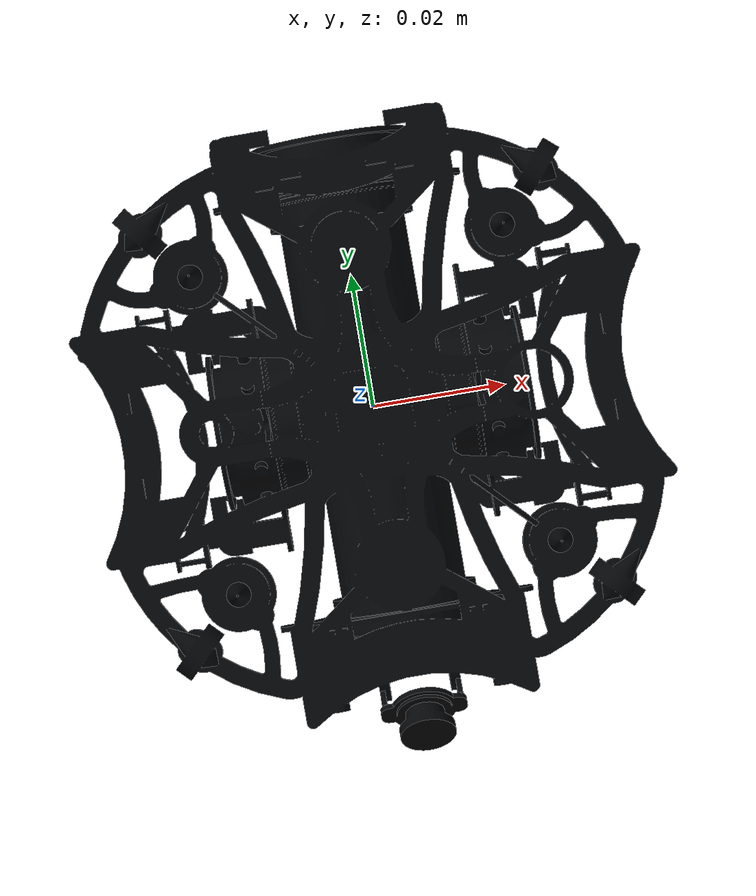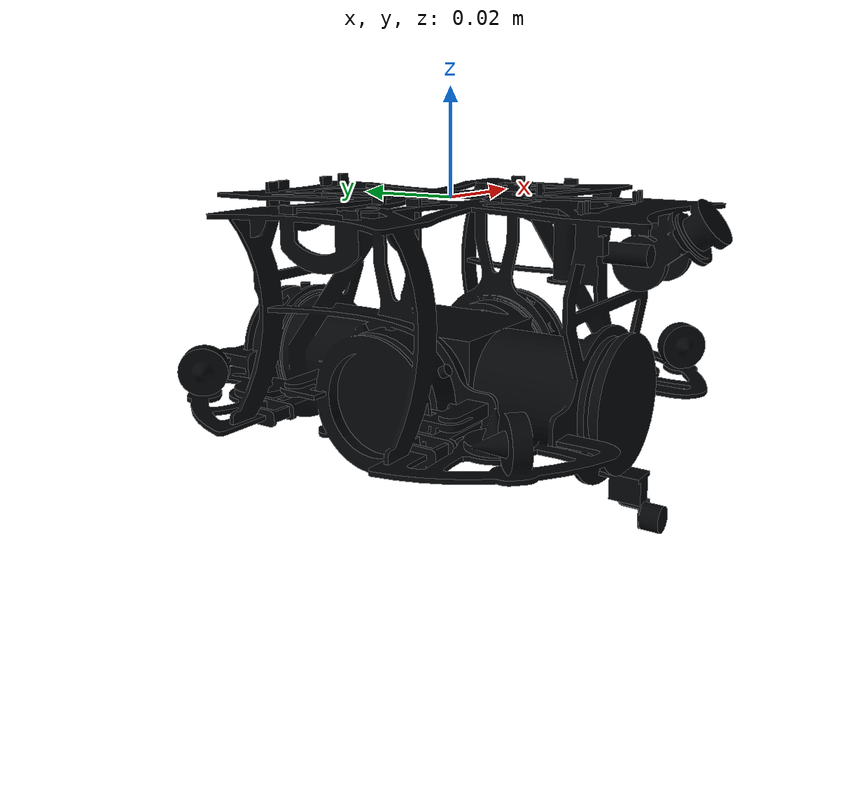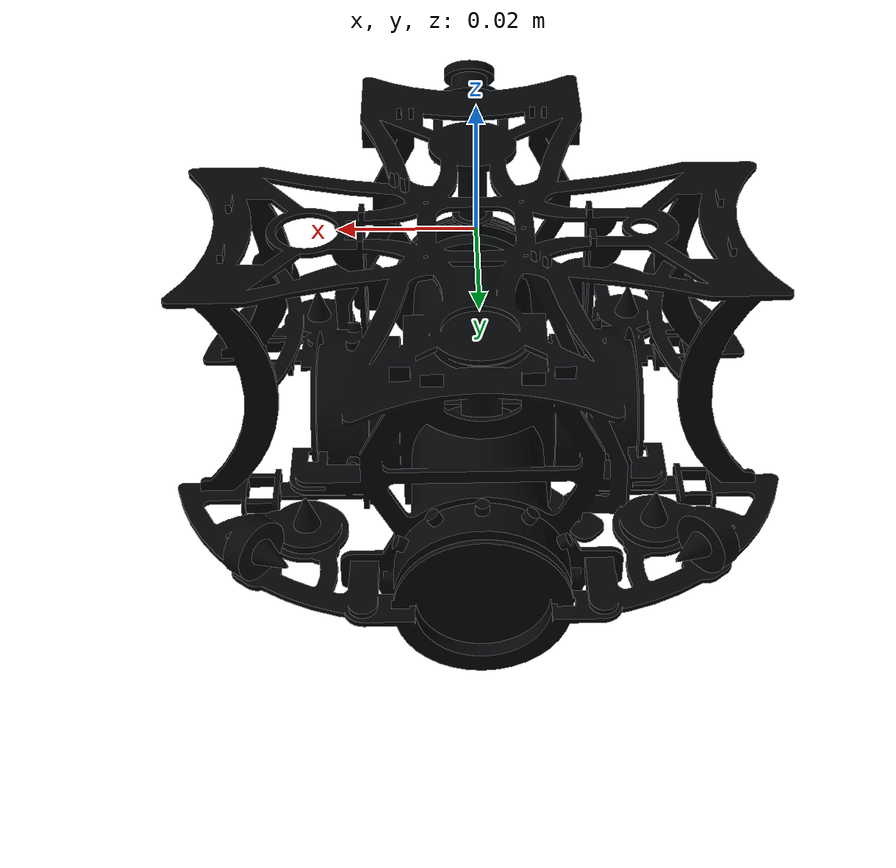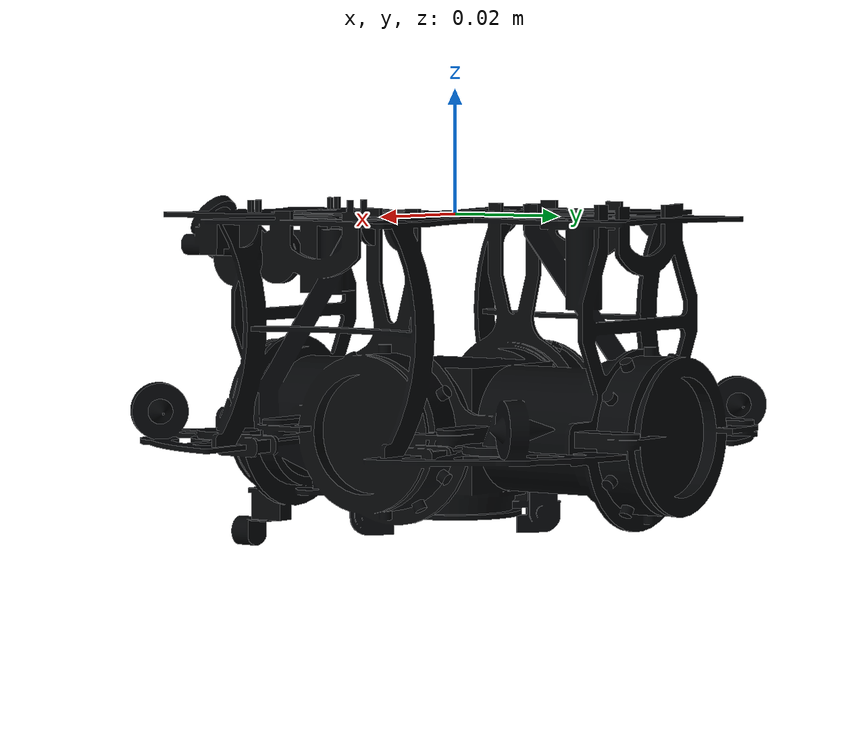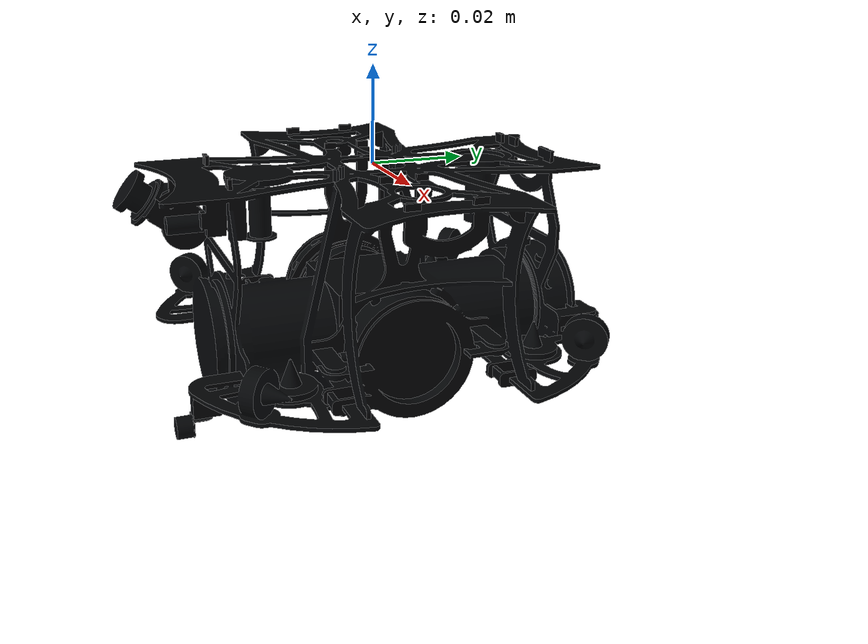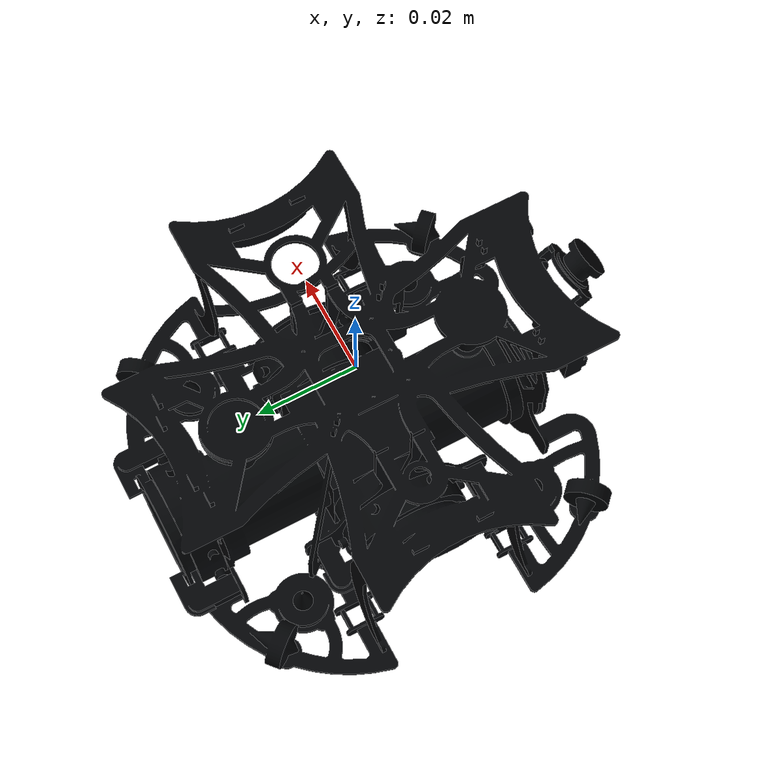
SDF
<?xml version='1.0'?>
<sdf version='1.5'>
  <model name='BlueRov2'>
    <pose>0 0 0 0 0 0</pose>
    <link name='base_link'>
      <inertial>
        <mass>11</mass>
        <inertia>
          <ixx>1</ixx>
          <ixy>0</ixy>
          <ixz>0</ixz>
          <iyy>1</iyy>
          <iyz>0</iyz>
          <izz>1</izz>
        </inertia>
      </inertial>
      <visual name='base_link_visual'>
        <geometry>
          <mesh>
            <scale>0.1 0.1 0.1</scale>
            <uri>model://mesh/auv.dae</uri>
          </mesh>
        </geometry>
      </visual>
      <sensor name="imu_sensor" type="imu">
        <pose>0 0 0 0 0 0</pose>
        <always_on>1</always_on>
        <update_rate>1000.0</update_rate>
      </sensor>
    </link>

    <link name='thruster1'>
      <pose>0.12 -0.11 0 1.5707963 1.5707963 -0.78539815</pose>
      <inertial>
        <mass>1e-10</mass>
        <inertia>
          <ixx>1</ixx>
          <ixy>0</ixy>
          <ixz>0</ixz>
          <iyy>1</iyy>
          <iyz>0</iyz>
          <izz>1</izz>
        </inertia>
      </inertial>
    </link>
    <joint name='thruster1_joint' type='fixed'>
      <parent>base_link</parent>
      <child>thruster1</child>
    </joint>

    <link name='thruster2'>
      <pose>0.12 0.11 0 1.5707963 1.5707963 3.92699075</pose>
      <inertial>
        <mass>1e-10</mass>
        <inertia>
          <ixx>1</ixx>
          <ixy>0</ixy>
          <ixz>0</ixz>
          <iyy>1</iyy>
          <iyz>0</iyz>
          <izz>1</izz>
        </inertia>
      </inertial>
    </link>
    <joint name='thruster2_joint' type='fixed'>
      <parent>base_link</parent>
      <child>thruster2</child>
      <axis>
        <xyz>0 0 1</xyz>
        <use_parent_model_frame>1</use_parent_model_frame>
      </axis>
    </joint>

    <link name='thruster3'>
      <pose>-0.12 -0.11 0 1.5707963 1.5707963 0.78540075</pose>
      <inertial>
        <mass>1e-10</mass>
        <inertia>
          <ixx>1</ixx>
          <ixy>0</ixy>
          <ixz>0</ixz>
          <iyy>1</iyy>
          <iyz>0</iyz>
          <izz>1</izz>
        </inertia>
      </inertial>
    </link>
    <joint name='thruster3_joint' type='fixed'>
      <parent>base_link</parent>
      <child>thruster3</child>
      <axis>
        <xyz>0 0 1</xyz>
        <use_parent_model_frame>1</use_parent_model_frame>
      </axis>
    </joint>

    <link name='thruster4'>
      <pose>-0.12 0.11 0 1.5707963 1.5707963 2.35619445</pose>
      <inertial>
        <mass>1e-10</mass>
        <inertia>
          <ixx>1</ixx>
          <ixy>0</ixy>
          <ixz>0</ixz>
          <iyy>1</iyy>
          <iyz>0</iyz>
          <izz>1</izz>
        </inertia>
      </inertial>
    </link>
    <joint name='thruster4_joint' type='fixed'>
      <parent>base_link</parent>
      <child>thruster4</child>
      <axis>
        <xyz>0 0 -1</xyz>
        <use_parent_model_frame>1</use_parent_model_frame>
      </axis>
    </joint>

    <link name='thruster5'>
      <pose>0 -0.11 0 3.1415926 0 0</pose>
      <inertial>
        <mass>1e-10</mass>
        <inertia>
          <ixx>1</ixx>
          <ixy>0</ixy>
          <ixz>0</ixz>
          <iyy>1</iyy>
          <iyz>0</iyz>
          <izz>1</izz>
        </inertia>
      </inertial>
    </link>
    <joint name='thruster5_joint' type='fixed'>
      <parent>base_link</parent>
      <child>thruster5</child>
      <axis>
        <xyz>0 -1 0</xyz>
        <use_parent_model_frame>1</use_parent_model_frame>
      </axis>
    </joint>

    <link name='thruster6'>
      <pose>0 0.11 0 3.1415926 0 0</pose>
      <inertial>
        <mass>1e-10</mass>
        <inertia>
          <ixx>1</ixx>
          <ixy>0</ixy>
          <ixz>0</ixz>
          <iyy>1</iyy>
          <iyz>0</iyz>
          <izz>1</izz>
        </inertia>
      </inertial>
    </link>
    <joint name='thruster6_joint' type='fixed'>
      <parent>base_link</parent>
      <child>thruster6</child>
      <axis>
        <xyz>0 1 0</xyz>
        <use_parent_model_frame>1</use_parent_model_frame>
      </axis>
    </joint>

    <link name='thruster7'>
      <pose>0 0.11 0 3.1415926 0 0</pose>
      <inertial>
        <mass>1e-10</mass>
        <inertia>
          <ixx>1</ixx>
          <ixy>0</ixy>
          <ixz>0</ixz>
          <iyy>1</iyy>
          <iyz>0</iyz>
          <izz>1</izz>
        </inertia>
      </inertial>
    </link>
    <joint name='thruster7_joint' type='fixed'>
      <parent>base_link</parent>
      <child>thruster6</child>
      <axis>
        <xyz>0 -1 0</xyz>
        <use_parent_model_frame>1</use_parent_model_frame>
      </axis>
    </joint>

    <link name='thruster8'>
      <pose>0 0.11 0 3.1415926 0 0</pose>
      <inertial>
        <mass>1e-10</mass>
        <inertia>
          <ixx>1</ixx>
          <ixy>0</ixy>
          <ixz>0</ixz>
          <iyy>1</iyy>
          <iyz>0</iyz>
          <izz>1</izz>
        </inertia>
      </inertial>
    </link>
    <joint name='thruster8_joint' type='fixed'>
      <parent>base_link</parent>
      <child>thruster6</child>
      <axis>
        <xyz>0 1 0</xyz>
        <use_parent_model_frame>1</use_parent_model_frame>
      </axis>
    </joint>

    <allow_auto_disable>1</allow_auto_disable>

    <plugin name="ArduPilotPlugin" filename="libArduPilotPlugin.so">
      <fdm_addr>127.0.0.1</fdm_addr>
      <fdm_port_in>9002</fdm_port_in>
      <fdm_port_out>9003</fdm_port_out>-->
      <imuName>BlueRov2::base_link::imu_sensor</imuName>
      <connectionTimeoutMaxCount>5</connectionTimeoutMaxCount>

      <!--
        incoming control command [0, 1]
        so offset it by -0.5 to get [-0.5, 0.5].
        multiplier = 102
        Positive thrust = 51
        Negative thrust = -41
      -->
        <control channel="0">
          <type>EFFORT</type>
          <offset>-0.5</offset>
          <p_gain>1</p_gain>
          <i_gain>0</i_gain>
          <d_gain>0</d_gain>
          <i_max>0</i_max>
          <i_min>0</i_min>
          <cmd_max>51</cmd_max>
          <cmd_min>-40</cmd_min>
          <linkName>BlueRov2::thruster1</linkName>
          <multiplier>102</multiplier>
        </control>

        <control channel="1">
          <type>EFFORT</type>
          <offset>-0.5</offset>
          <p_gain>1</p_gain>
          <i_gain>0</i_gain>
          <d_gain>0</d_gain>
          <i_max>0</i_max>
          <i_min>0</i_min>
          <cmd_max>51</cmd_max>
          <cmd_min>-40</cmd_min>
          <linkName>BlueRov2::thruster2</linkName>
          <multiplier>102</multiplier>
        </control>

        <control channel="2">
          <type>EFFORT</type>
          <offset>-0.5</offset>
          <p_gain>1</p_gain>
          <i_gain>0</i_gain>
          <d_gain>0</d_gain>
          <i_max>0</i_max>
          <i_min>0</i_min>
          <cmd_max>51</cmd_max>
          <cmd_min>-40</cmd_min>
          <linkName>BlueRov2::thruster3</linkName>
          <multiplier>102</multiplier>
        </control>

        <control channel="3">
          <type>EFFORT</type>
          <offset>-0.5</offset>
          <p_gain>1</p_gain>
          <i_gain>0</i_gain>
          <d_gain>0</d_gain>
          <i_max>0</i_max>
          <i_min>0</i_min>
          <cmd_max>51</cmd_max>
          <cmd_min>-40</cmd_min>
          <linkName>BlueRov2::thruster4</linkName>
          <multiplier>102</multiplier>
        </control>

        <control channel="4">
          <type>EFFORT</type>
          <offset>-0.5</offset>
          <p_gain>1</p_gain>
          <i_gain>0</i_gain>
          <d_gain>0</d_gain>
          <i_max>0</i_max>
          <i_min>0</i_min>
          <cmd_max>51</cmd_max>
          <cmd_min>-40</cmd_min>
          <linkName>BlueRov2::thruster5</linkName>
          <multiplier>102</multiplier>

        </control>

        <control channel="5">
          <type>EFFORT</type>
          <offset>-0.5</offset>
          <p_gain>1</p_gain>
          <i_gain>0</i_gain>
          <d_gain>0</d_gain>
          <i_max>0</i_max>
          <i_min>0</i_min>
          <cmd_max>51</cmd_max>
          <cmd_min>-40</cmd_min>
          <linkName>BlueRov2::thruster6</linkName>
          <multiplier>102</multiplier>
        </control>
    </plugin>

    <!-- buoyancy plugin -->
    <plugin name="freebuoyancy_gazebo" filename="libfreebuoyancy_gazebo.so">
      <descriptionParam>robot_description</descriptionParam>
      <fluidTopic>current</fluidTopic>
      <alwaysOn>true</alwaysOn>
      <surface>0 0 0</surface>
      <updateRate>.001</updateRate>

      <link name="base_link">
        <buoyancy>
          <compensation>0.2525</compensation>
          <origin xyz= "0.12585 0.111 0.1789"/>
        </buoyancy>
        <buoyancy>
          <compensation>0.2525</compensation>
          <origin xyz= "-0.12585 0.111 0.1789"/>
        </buoyancy>
        <buoyancy>
          <compensation>0.2525</compensation>
          <origin xyz= "-0.12585 -0.111 0.1789"/>
        </buoyancy>
        <buoyancy>
          <compensation>0.2525</compensation>
          <origin xyz= "0.12585 -0.111 0.1789"/>
        </buoyancy>
      </link>
    </plugin>
  </model>
</sdf>
